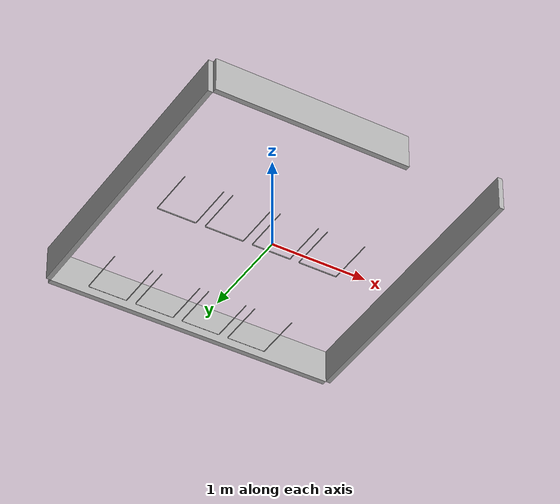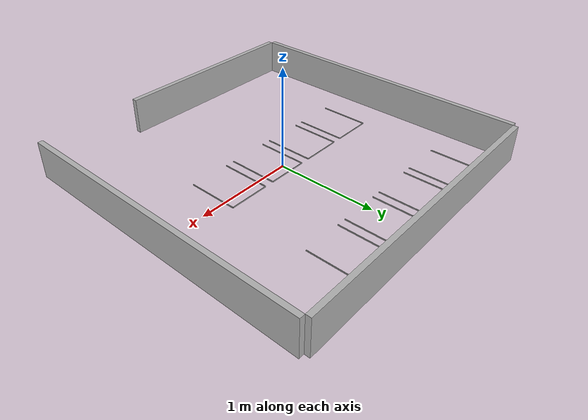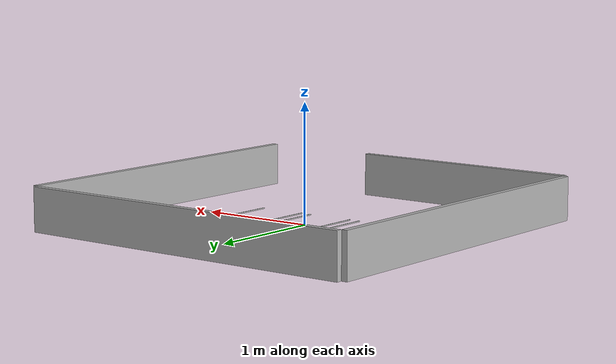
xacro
<?xml version="1.0" ?>
<robot name="qwee" xmlns:xacro="http://www.ros.org/wiki/xacro">

<xacro:include filename="$(find gazebo_map)/urdf/materials.xacro" />
<xacro:include filename="$(find gazebo_map)/urdf/qwee.trans" />
<xacro:include filename="$(find gazebo_map)/urdf/qwee.gazebo" />
<link name="base_link">
  <inertial>
    <origin xyz="-0.09121255774675902 0.13984228304608404 0.18200623416618342" rpy="0 0 0"/>
    <mass value="201.31"/>
    <inertia ixx="293.102378" iyy="317.820351" izz="606.430044" ixy="-30.334954" iyz="0.042971" ixz="-0.010813"/>
  </inertial>
  <visual>
    <origin xyz="0 0 0" rpy="0 0 0"/>
    <geometry>
      <mesh filename="package://gazebo_map/meshes/base_link.stl" scale="0.001 0.001 0.001"/>
    </geometry>
    <material name="silver"/>
  </visual>
  <collision>
    <origin xyz="0 0 0" rpy="0 0 0"/>
    <geometry>
      <mesh filename="package://gazebo_map/meshes/base_link.stl" scale="0.001 0.001 0.001"/>
    </geometry>
  </collision>
</link>

</robot>

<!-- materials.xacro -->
<robot name="qwee" xmlns:xacro="http://www.ros.org/wiki/xacro" >

<material name="silver">
  <color rgba="0.700 0.700 0.700 1.000"/>
</material>

</robot>

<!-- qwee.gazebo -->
<robot name="qwee" xmlns:xacro="http://www.ros.org/wiki/xacro" >

<xacro:property name="body_color" value="Gazebo/Silver" />

<gazebo>
  <plugin name="control" filename="libgazebo_ros_control.so"/>
</gazebo>
<gazebo reference="base_link">
  <material>${body_color}</material>
  <mu1>0.2</mu1>
  <mu2>0.2</mu2>
  <selfCollide>true</selfCollide>
  <gravity>true</gravity>
</gazebo>

</robot>
